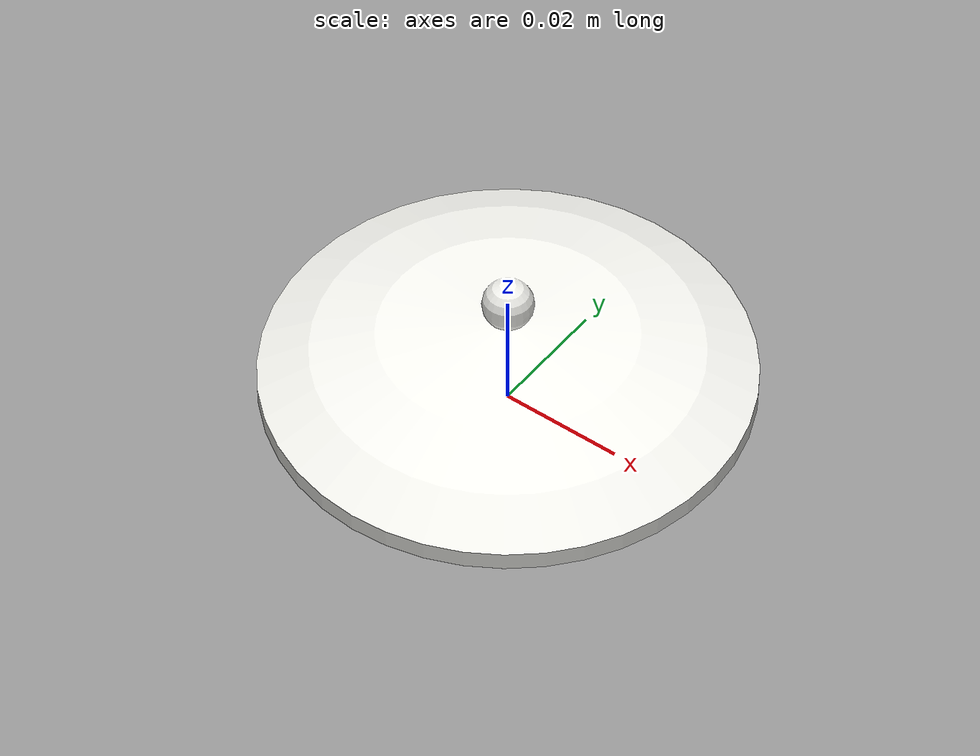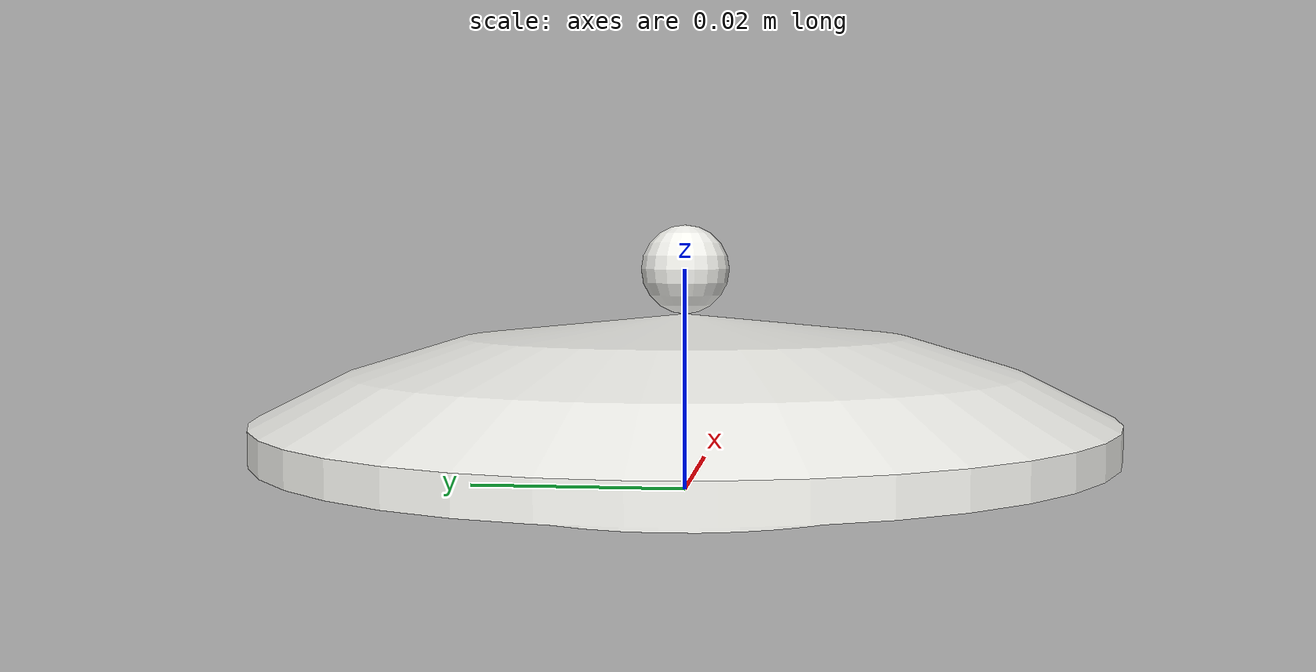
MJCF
<mujoco model="SugarBowl_Lid">
  <default>
    <default class="visual">
      <geom group="2" type="mesh" contype="0" conaffinity="0"/>
    </default>
    <default class="collision">
      <geom group="3" type="mesh"/>
    </default>
  </default>
  <asset>
    <material name="Porcelain_White" specular="0.5" shininess="0.672400024" rgba="0.940000 0.940000 0.920000 1.000000"/>
    <mesh file="SugarBowl_Lid.obj"/>
    <mesh file="SugarBowl_Lid_collision_0.obj"/>
    <mesh file="SugarBowl_Lid_collision_1.obj"/>
    <mesh file="SugarBowl_Lid_collision_2.obj"/>
  </asset>
  <worldbody>
    <body name="SugarBowl_Lid">
      <geom material="Porcelain_White" mesh="SugarBowl_Lid" class="visual"/>
      <geom mesh="SugarBowl_Lid_collision_0" rgba="0.6727717563825363 0.9081458975428324 0.2580384285774957 1" class="collision"/>
      <geom mesh="SugarBowl_Lid_collision_1" rgba="0.8169241649753494 0.7047076775789038 0.2839585130676403 1" class="collision"/>
      <geom mesh="SugarBowl_Lid_collision_2" rgba="0.5932512461448958 0.29700354094214676 0.6555404495451784 1" class="collision"/>
    </body>
  </worldbody>
</mujoco>
